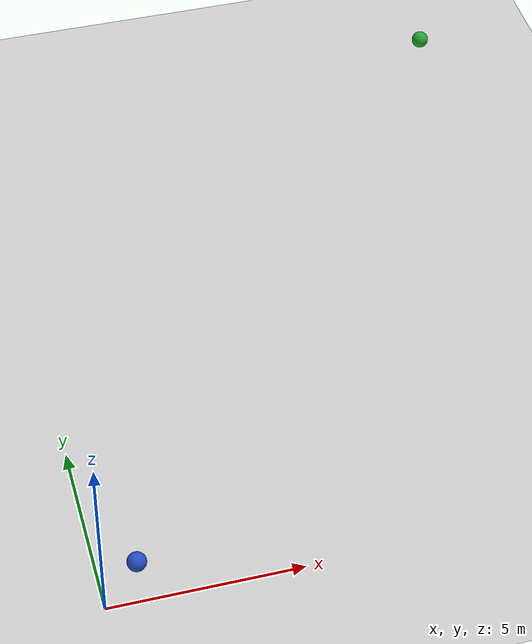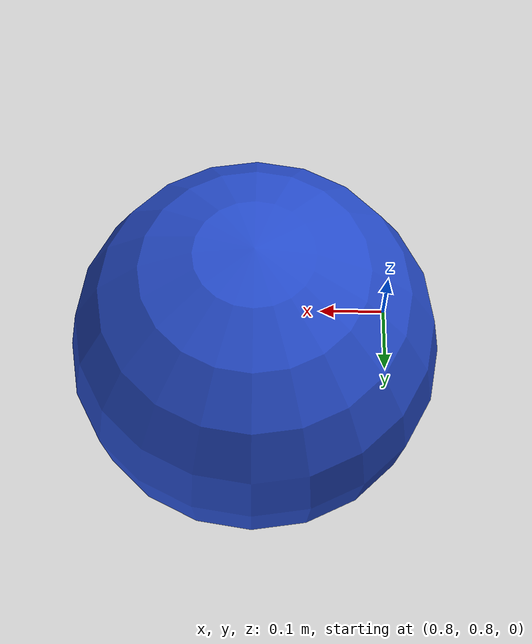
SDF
<?xml version="1.0" encoding="utf-8"?>
<sdf version="1.4">
 <world name="default">
  <!-- Ground Plane -->
  <include>
   <uri>
    model://ground_plane
   </uri>
  </include>
  <model name="target_marble">
   <link name="link">
    <pose>
     14 19 0.25 0 0 0
    </pose>
    <collision name="collision">
     <geometry>
      <sphere>
       <radius>
        0.25
       </radius>
      </sphere>
     </geometry>
    </collision>
    <visual name="visual">
     <geometry>
      <sphere>
       <radius>
        0.25
       </radius>
      </sphere>
     </geometry>
     <material>
      <script>
       <uri>
        file://media/materials/scripts/gazebo.material
       </uri>
       <name>
        Gazebo/Green
       </name>
      </script>
     </material>
    </visual>
   </link>
  </model>
  <model name="marble">
   <link name="chassis">
    <gravity>
     0
    </gravity>
    <pose>
     1 1 0.25 0 0 0
    </pose>
    <collision name="collision">
     <geometry>
      <sphere>
       <radius>
        0.25
       </radius>
      </sphere>
     </geometry>
    </collision>
    <visual name="visual">
     <geometry>
      <sphere>
       <radius>
        0.25
       </radius>
      </sphere>
     </geometry>
     <material>
      <script>
       <uri>
        file://media/materials/scripts/gazebo.material
       </uri>
       <name>
        Gazebo/Blue
       </name>
      </script>
     </material>
    </visual>
   </link>
   <plugin filename="build/libkinPoint.so" name="kinPoint"/>
  </model>
  <include>
   <uri>
    model://sun
   </uri>
  </include>
 </world>
</sdf>
